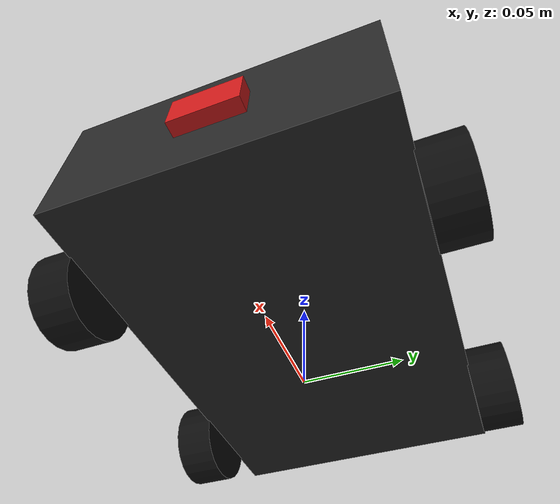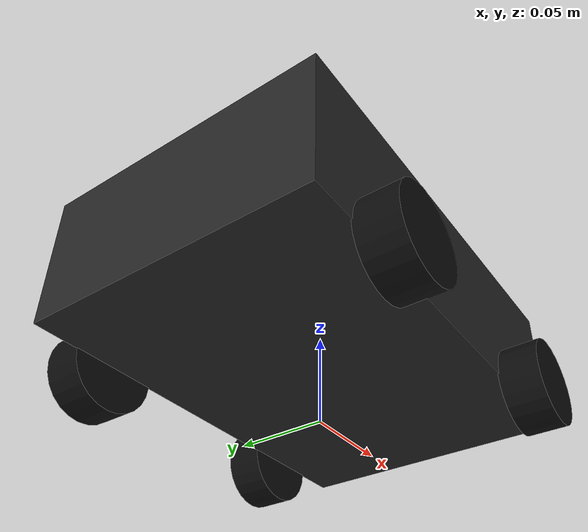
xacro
<?xml version="1.0"?>
<robot name="yahboom_microros_4wd" xmlns:xacro="http://www.ros.org/wiki/xacro">

  <!-- ==================== PARÁMETROS FÍSICOS YAHBOOM 4WD ==================== -->
  <xacro:property name="chasis_largo" value="0.238"/>
  <xacro:property name="chasis_ancho" value="0.160"/>
  <xacro:property name="chasis_alto" value="0.075"/>
  <xacro:property name="chasis_masa" value="1.2"/>

  <!-- Neumáticos 48mm x 21.5mm (Llantas convencionales Yahboom) -->
  <xacro:property name="rueda_radio" value="0.024"/>
  <xacro:property name="rueda_ancho" value="0.0215"/>
  <xacro:property name="separacion_ruedas" value="0.180"/>
  <xacro:property name="distancia_ejes" value="0.140"/>
  <xacro:property name="rueda_masa" value="0.08"/>

  <!-- ==================== BASE FOOTPRINT & BASE LINK ==================== -->
  <link name="base_footprint"/>

  <joint name="base_footprint_joint" type="fixed">
    <parent link="base_footprint"/>
    <child link="base_link"/>
    <origin xyz="0 0 ${rueda_radio}" rpy="0 0 0"/>
  </joint>

  <link name="base_link">
    <visual>
      <origin xyz="0 0 ${chasis_alto/2}" rpy="0 0 0"/>
      <geometry>
        <box size="${chasis_largo} ${chasis_ancho} ${chasis_alto}"/>
      </geometry>
      <material name="aluminio_negro_yahboom">
        <color rgba="0.15 0.15 0.15 1.0"/>
      </material>
    </visual>
    <collision>
      <origin xyz="0 0 ${chasis_alto/2}" rpy="0 0 0"/>
      <geometry>
        <box size="${chasis_largo} ${chasis_ancho} ${chasis_alto}"/>
      </geometry>
    </collision>
    <inertial>
      <origin xyz="0 0 ${chasis_alto/2}" rpy="0 0 0"/>
      <mass value="${chasis_masa}"/>
      <inertia
        ixx="${(1/12)*chasis_masa*(chasis_ancho*chasis_ancho + chasis_alto*chasis_alto)}" ixy="0.0" ixz="0.0"
        iyy="${(1/12)*chasis_masa*(chasis_largo*chasis_largo + chasis_alto*chasis_alto)}" iyz="0.0"
        izz="${(1/12)*chasis_masa*(chasis_largo*chasis_largo + chasis_ancho*chasis_ancho)}"/>
    </inertial>
  </link>

  <!-- ==================== MACRO DE LAS 4 RUEDAS ==================== -->
  <xacro:macro name="rueda" params="prefijo x_signo y_signo">
    <link name="rueda_${prefijo}">
      <visual>
        <geometry>
          <cylinder radius="${rueda_radio}" length="${rueda_ancho}"/>
        </geometry>
        <material name="goma_negra">
          <color rgba="0.05 0.05 0.05 1.0"/>
        </material>
      </visual>
      <collision>
        <geometry>
          <cylinder radius="${rueda_radio}" length="${rueda_ancho}"/>
        </geometry>
      </collision>
      <inertial>
        <mass value="${rueda_masa}"/>
        <inertia
          ixx="${(1/12)*rueda_masa*(3*rueda_radio*rueda_radio + rueda_ancho*rueda_ancho)}" ixy="0.0" ixz="0.0"
          iyy="${(1/12)*rueda_masa*(3*rueda_radio*rueda_radio + rueda_ancho*rueda_ancho)}" iyz="0.0"
          izz="${(1/2)*rueda_masa*rueda_radio*rueda_radio}"/>
      </inertial>
    </link>

    <joint name="joint_rueda_${prefijo}" type="continuous">
      <parent link="base_link"/>
      <child link="rueda_${prefijo}"/>
      <origin xyz="${x_signo * distancia_ejes/2} ${y_signo * separacion_ruedas/2} 0" rpy="-1.5708 0 0"/>
      <axis xyz="0 0 1"/>
    </joint>

    <gazebo reference="rueda_${prefijo}">
      <mu1>0.6</mu1>
      <mu2>0.6</mu2>
    </gazebo>
  </xacro:macro>

  <xacro:rueda prefijo="del_izq" x_signo="1" y_signo="1"/>
  <xacro:rueda prefijo="del_der" x_signo="1" y_signo="-1"/>
  <xacro:rueda prefijo="tra_izq" x_signo="-1" y_signo="1"/>
  <xacro:rueda prefijo="tra_der" x_signo="-1" y_signo="-1"/>

  <!-- ==================== SENSOR LIDAR MS200 ==================== -->
  <link name="lidar_link">
    <visual>
      <geometry>
        <cylinder radius="0.025" length="0.025"/>
      </geometry>
      <material name="azul_yahboom">
        <color rgba="0.0 0.4 0.8 1.0"/>
      </material>
    </visual>
    <collision>
      <geometry>
        <cylinder radius="0.025" length="0.025"/>
      </geometry>
    </collision>
    <inertial>
      <mass value="0.08"/>
      <inertia ixx="1e-4" ixy="0" ixz="0" iyy="1e-4" iyz="0" izz="1e-4"/>
    </inertial>
  </link>

  <joint name="lidar_joint" type="fixed">
    <parent link="base_link"/>
    <child link="lidar_link"/>
    <origin xyz="0.01 0 ${chasis_alto + 0.0125}" rpy="0 0 0"/>
  </joint>

  <gazebo reference="lidar_link">
    <sensor name="gpu_lidar" type="gpu_lidar">
      <update_rate>10</update_rate>
      <topic>/scan</topic>
      <gz_frame_id>lidar_link</gz_frame_id>
      <lidar>
        <scan>
          <horizontal>
            <samples>360</samples>
            <resolution>1</resolution>
            <min_angle>-3.14159</min_angle>
            <max_angle>3.14159</max_angle>
          </horizontal>
        </scan>
        <range>
          <min>0.05</min>
          <max>12.0</max>
          <resolution>0.01</resolution>
        </range>
      </lidar>
      <always_on>true</always_on>
      <visualize>true</visualize>
    </sensor>
  </gazebo>

  <!-- ==================== CÁMARA FRONTAL YAHBOOM ==================== -->
  <link name="camera_link">
    <visual>
      <geometry>
        <box size="0.015 0.035 0.02"/>
      </geometry>
      <material name="rojo_camara">
        <color rgba="0.8 0.1 0.1 1.0"/>
      </material>
    </visual>
    <collision>
      <geometry>
        <box size="0.015 0.035 0.02"/>
      </geometry>
    </collision>
    <inertial>
      <mass value="0.04"/>
      <inertia ixx="1e-5" ixy="0" ixz="0" iyy="1e-5" iyz="0" izz="1e-5"/>
    </inertial>
  </link>

  <joint name="camera_joint" type="fixed">
    <parent link="base_link"/>
    <child link="camera_link"/>
    <origin xyz="${chasis_largo/2} 0 ${chasis_alto/2}" rpy="0 0 0"/>
  </joint>

  <!-- Frame óptico (convención REP-103: z adelante, x derecha, y abajo).
       Las imágenes y camera_info se publican en este frame. -->
  <link name="camera_optical_link"/>
  <joint name="camera_optical_joint" type="fixed">
    <parent link="camera_link"/>
    <child link="camera_optical_link"/>
    <origin xyz="0 0 0" rpy="${-pi/2} 0 ${-pi/2}"/>
  </joint>

  <gazebo reference="camera_link">
    <sensor name="camera" type="camera">
      <update_rate>30</update_rate>
      <topic>/camera/image_raw</topic>
      <gz_frame_id>camera_optical_link</gz_frame_id>
      <camera>
        <horizontal_fov>1.85</horizontal_fov>
        <image>
          <width>640</width>
          <height>480</height>
          <format>R8G8B8</format>
        </image>
        <clip>
          <near>0.03</near>
          <far>10.0</far>
        </clip>
      </camera>
      <always_on>true</always_on>
      <visualize>true</visualize>
    </sensor>
  </gazebo>

  <!-- ==================== PLUGINS GAZEBO SIM ==================== -->
  <gazebo>
    <!-- Plugin DiffDrive adaptado para Skid-Steering (4 ruedas) -->
    <plugin filename="gz-sim-diff-drive-system" name="gz::sim::systems::DiffDrive">
      <left_joint>joint_rueda_del_izq</left_joint>
      <left_joint>joint_rueda_tra_izq</left_joint>
      <right_joint>joint_rueda_del_der</right_joint>
      <right_joint>joint_rueda_tra_der</right_joint>
      <wheel_separation>${separacion_ruedas}</wheel_separation>
      <wheel_radius>${rueda_radio}</wheel_radius>
      <odom_publish_frequency>30</odom_publish_frequency>
      <topic>/cmd_vel</topic>
      <odom_topic>/odom</odom_topic>
      <tf_topic>/tf</tf_topic>
      <frame_id>odom</frame_id>
      <child_frame_id>base_footprint</child_frame_id>
    </plugin>

    <!-- Publicador de estados de articulaciones -->
    <plugin filename="gz-sim-joint-state-publisher-system" name="gz::sim::systems::JointStatePublisher">
      <topic>/joint_states</topic>
    </plugin>

    <!-- Odometría "ground truth" (pose real del simulador, incluye derrape).
         Se usa solo para el análisis de error; su TF no se puentea. -->
    <plugin filename="gz-sim-odometry-publisher-system" name="gz::sim::systems::OdometryPublisher">
      <odom_frame>odom</odom_frame>
      <robot_base_frame>base_footprint</robot_base_frame>
      <odom_topic>/ground_truth/odom</odom_topic>
      <tf_topic>/ground_truth/tf</tf_topic>
      <odom_publish_frequency>30</odom_publish_frequency>
      <dimensions>2</dimensions>
    </plugin>

    <!-- Sistema de sensores -->
    <plugin filename="gz-sim-sensors-system" name="gz::sim::systems::Sensors">
      <render_engine>ogre2</render_engine>
    </plugin>
  </gazebo>

</robot>
